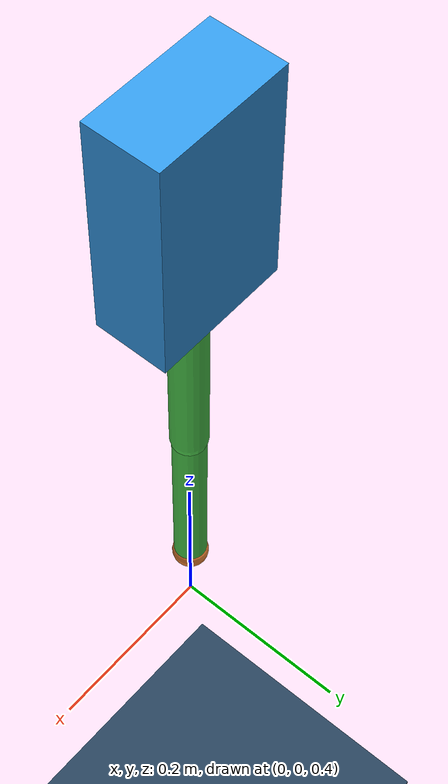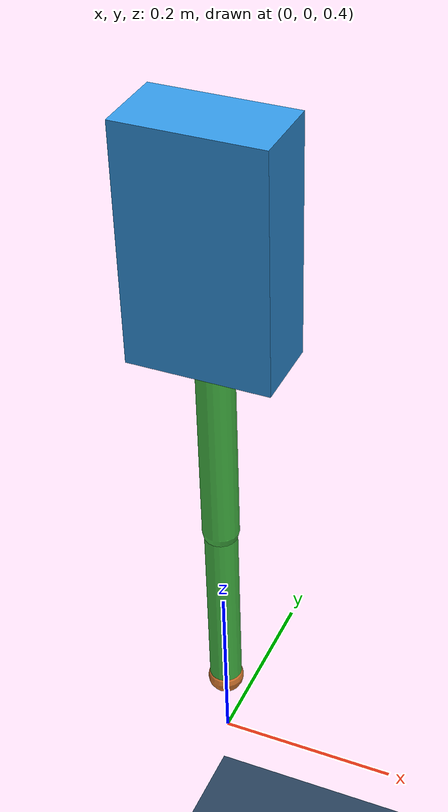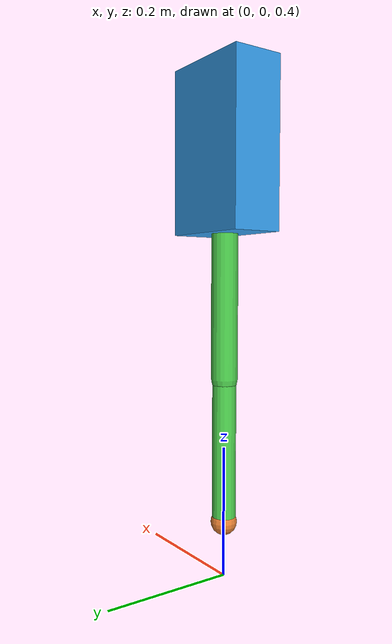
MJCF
<mujoco model="biped2d_hw4">
  <compiler angle="radian"/>

  <option gravity="0 0 -9.81"
          integrator="RK4"
          timestep="0.00025">
    <flag override="enable"/>
  </option>

  <!-- REQUIRED FOR VIDEO RENDERING -->
  <visual>
    <global offwidth="1920" offheight="1080"/>
  </visual>

  <asset>
    <texture type="skybox" builtin="gradient" rgb1="0.3 0.5 0.7" rgb2="0 0 0" width="512" height="3072"/>
    <texture type="2d" name="groundplane" builtin="checker" mark="edge" rgb1="0.2 0.3 0.4" rgb2="0.1 0.2 0.3" markrgb="0.8 0.8 0.8" width="300" height="300"/>
    <material name="groundplane" texture="groundplane" texuniform="true" texrepeat="5 5" reflectance="0.2"/>
  </asset>

  <worldbody>
    <light pos="0 0 2.0" dir="0 0 -1" directional="true"/>
    <camera name="side" mode="trackcom" pos="0 -2.0 1.0" fovy="40"/>

    <geom name="floor" type="box" pos="0 0 -0.05" size="5 5 0.05" material="groundplane" contype="1" conaffinity="1" condim="3" friction="0.7 0.5 0"/>

    <body name="trunk" pos="0 0 1.05">
      <freejoint/>
      <!-- Trunk: 15cm x 8cm x 25cm, mass 8kg - NO COLLISIONS -->
      <geom name="trunk_geom" type="box" size="0.075 0.04 0.125" mass="8.0"
            contype="0" conaffinity="0" rgba="0.2 0.6 0.9 1"/>

      <!-- LEFT LEG: Both legs attached at exact center bottom (0, 0, -0.125) -->
      <body name="left_hip" pos="0 0 -0.125">
        <joint name="q1" type="hinge" axis="0 1 0" range="-3.14 3.14"/>
        <!-- Left thigh: 22cm capsule, radius 2cm, mass 0.25kg - NO COLLISIONS -->
        <inertial mass="0.25" diaginertia="0.0001 0.001006 0.001006" pos="0 0 -0.11"/>
        <geom type="capsule" fromto="0 0 0 0 0 -0.22" size="0.02"
              contype="0" conaffinity="0" rgba="0.3 0.8 0.3 1"/>

        <body name="left_shank" pos="0 0 -0.22">
          <joint name="q2" type="hinge" axis="0 1 0" range="-3.14 3.14"/>
          <!-- Left shank: 22cm capsule, radius 1.8cm, mass 0.25kg -->
          <inertial mass="0.25" diaginertia="0.0001 0.001006 0.001006" pos="0 0 -0.11"/>
          <geom type="capsule" fromto="0 0 0 0 0 -0.22" size="0.018" rgba="0.3 0.8 0.3 1"/>
          <geom name="l_toe" type="sphere" pos="0 0 -0.22" size="0.02" rgba="0.9 0.5 0.2 1"/>
        </body>
      </body>

      <!-- RIGHT LEG: Attached at exact same point as left -->
      <body name="right_hip" pos="0 0 -0.125">
        <joint name="q3" type="hinge" axis="0 1 0" range="-3.14 3.14"/>
        <!-- Right thigh: 22cm capsule, radius 2cm, mass 0.25kg - NO COLLISIONS -->
        <inertial mass="0.25" diaginertia="0.0001 0.001006 0.001006" pos="0 0 -0.11"/>
        <geom type="capsule" fromto="0 0 0 0 0 -0.22" size="0.02"
              contype="0" conaffinity="0" rgba="0.8 0.3 0.3 1"/>

        <body name="right_shank" pos="0 0 -0.22">
          <joint name="q4" type="hinge" axis="0 1 0" range="-3.14 3.14"/>
          <!-- Right shank: 22cm capsule, radius 1.8cm, mass 0.25kg -->
          <inertial mass="0.25" diaginertia="0.0001 0.001006 0.001006" pos="0 0 -0.11"/>
          <geom type="capsule" fromto="0 0 0 0 0 -0.22" size="0.018" rgba="0.8 0.3 0.3 1"/>
          <geom name="r_toe" type="sphere" pos="0 0 -0.22" size="0.02" rgba="0.9 0.5 0.2 1"/>
        </body>
      </body>
    </body>
  </worldbody>

  <!-- Strong actuators -->
  <actuator>
    <motor joint="q1" gear="400"/>
    <motor joint="q2" gear="400"/>
    <motor joint="q3" gear="400"/>
    <motor joint="q4" gear="400"/>
  </actuator>
</mujoco>
